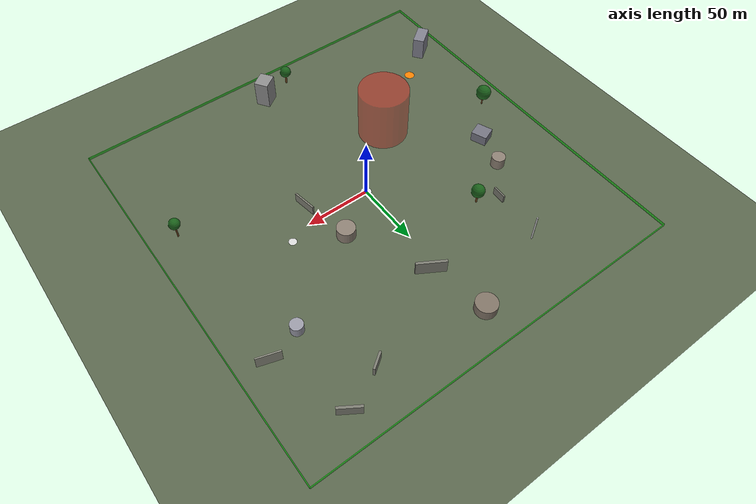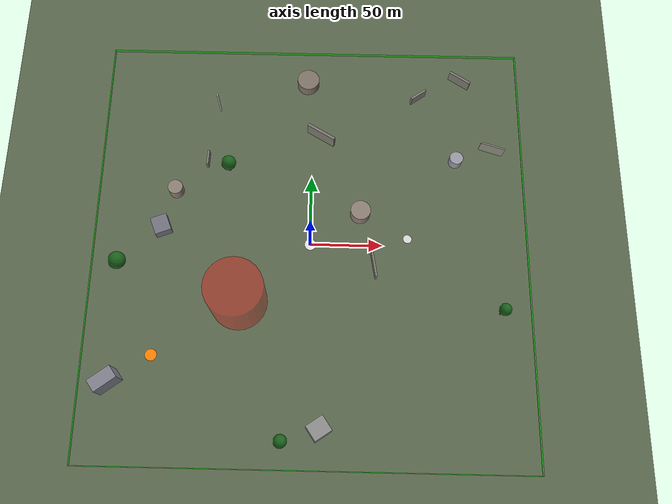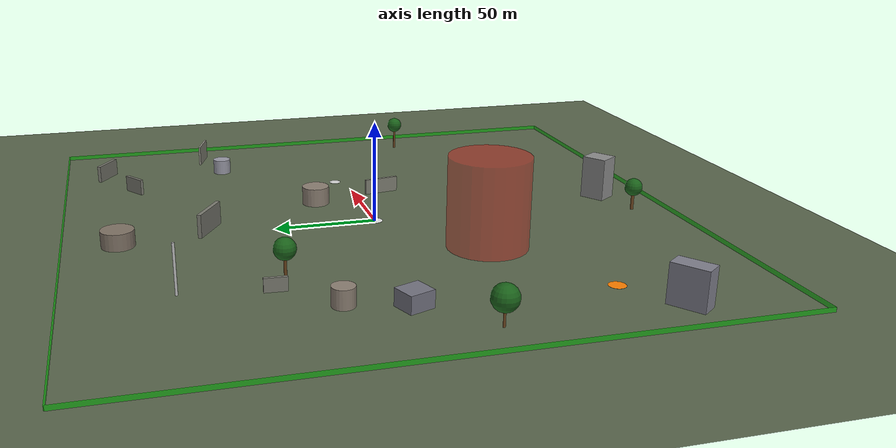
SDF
<?xml version="1.0" ?>
<sdf version="1.9">
  <!--
  Generated World: training_variant_009
  Seed: 51
  Difficulty: medium
  Obstacles: 18
  NFZs: 1
  Generated: 2025-12-27T10:39:35.573976
  Generator: Flyby F-11 World Generator v1.0.0
-->
  <world name="training_variant_009">
    <physics name="training_physics" type="ode">
      <max_step_size>0.001</max_step_size>
      <real_time_factor>1.0</real_time_factor>
      <real_time_update_rate>1000</real_time_update_rate>
      <ode>
        <solver>
          <type>quick</type>
          <iters>50</iters>
          <sor>1.3</sor>
        </solver>
        <constraints>
          <cfm>0.0</cfm>
          <erp>0.2</erp>
        </constraints>
      </ode>
    </physics>
    <plugin filename="gz-sim-physics-system" name="gz::sim::systems::Physics"/>
    <plugin filename="gz-sim-sensors-system" name="gz::sim::systems::Sensors">
      <render_engine>ogre2</render_engine>
    </plugin>
    <plugin filename="gz-sim-scene-broadcaster-system" name="gz::sim::systems::SceneBroadcaster"/>
    <plugin filename="gz-sim-user-commands-system" name="gz::sim::systems::UserCommands"/>
    <plugin filename="gz-sim-imu-system" name="gz::sim::systems::Imu"/>
    <plugin filename="gz-sim-air-pressure-system" name="gz::sim::systems::AirPressure"/>
    <plugin filename="gz-sim-magnetometer-system" name="gz::sim::systems::Magnetometer"/>
    <plugin filename="gz-sim-navsat-system" name="gz::sim::systems::NavSat"/>
    <plugin filename="gz-sim-contact-system" name="gz::sim::systems::Contact"/>
    <atmosphere type="adiabatic">
      <temperature>288.15</temperature>
      <pressure>101325</pressure>
      <mass_density>1.225</mass_density>
    </atmosphere>
    <spherical_coordinates>
      <surface_model>EARTH_WGS84</surface_model>
      <world_frame_orientation>ENU</world_frame_orientation>
      <latitude_deg>33.3853</latitude_deg>
      <longitude_deg>-117.5653</longitude_deg>
      <elevation>100</elevation>
      <heading_deg>0</heading_deg>
    </spherical_coordinates>
    <scene>
      <ambient>0.6 0.6 0.6 1</ambient>
      <background>0.7 0.8 0.9 1</background>
      <shadows>true</shadows>
      <grid>false</grid>
    </scene>
    <light type="directional" name="sun">
      <cast_shadows>true</cast_shadows>
      <pose>0 0 100 0 0 0</pose>
      <diffuse>0.8 0.8 0.8 1</diffuse>
      <specular>0.2 0.2 0.2 1</specular>
      <attenuation>
        <range>1000</range>
        <constant>0.9</constant>
        <linear>0.01</linear>
        <quadratic>0.001</quadratic>
      </attenuation>
      <direction>-0.5 0.1 -0.9</direction>
    </light>
    <model name="ground_plane">
      <static>true</static>
      <link name="link">
        <collision name="collision">
          <geometry>
            <plane>
              <normal>0 0 1</normal>
              <size>500 500</size>
            </plane>
          </geometry>
          <surface>
            <friction>
              <ode>
                <mu>100</mu>
                <mu2>50</mu2>
              </ode>
            </friction>
          </surface>
        </collision>
        <visual name="visual">
          <geometry>
            <plane>
              <normal>0 0 1</normal>
              <size>500 500</size>
            </plane>
          </geometry>
          <material>
            <ambient>0.35 0.4 0.3 1</ambient>
            <diffuse>0.35 0.4 0.3 1</diffuse>
          </material>
        </visual>
      </link>
    </model>
    <model name="geofence_north">
      <static>true</static>
      <pose>0 150.0 1 0 0 0</pose>
      <link name="link">
        <visual name="visual">
          <geometry>
            <box>
              <size>300.0 0.5 2</size>
            </box>
          </geometry>
          <material>
            <ambient>0 0.8 0 0.6</ambient>
            <diffuse>0 0.8 0 0.6</diffuse>
            <emissive>0 0.2 0 1</emissive>
          </material>
        </visual>
      </link>
    </model>
    <model name="geofence_south">
      <static>true</static>
      <pose>0 -150.0 1 0 0 0</pose>
      <link name="link">
        <visual name="visual">
          <geometry>
            <box>
              <size>300.0 0.5 2</size>
            </box>
          </geometry>
          <material>
            <ambient>0 0.8 0 0.6</ambient>
            <diffuse>0 0.8 0 0.6</diffuse>
            <emissive>0 0.2 0 1</emissive>
          </material>
        </visual>
      </link>
    </model>
    <model name="geofence_east">
      <static>true</static>
      <pose>150.0 0 1 0 0 0</pose>
      <link name="link">
        <visual name="visual">
          <geometry>
            <box>
              <size>0.5 300.0 2</size>
            </box>
          </geometry>
          <material>
            <ambient>0 0.8 0 0.6</ambient>
            <diffuse>0 0.8 0 0.6</diffuse>
            <emissive>0 0.2 0 1</emissive>
          </material>
        </visual>
      </link>
    </model>
    <model name="geofence_west">
      <static>true</static>
      <pose>-150.0 0 1 0 0 0</pose>
      <link name="link">
        <visual name="visual">
          <geometry>
            <box>
              <size>0.5 300.0 2</size>
            </box>
          </geometry>
          <material>
            <ambient>0 0.8 0 0.6</ambient>
            <diffuse>0 0.8 0 0.6</diffuse>
            <emissive>0 0.2 0 1</emissive>
          </material>
        </visual>
      </link>
    </model>
    <model name="nfz_0_volume">
      <static>true</static>
      <pose>-47.38441323392432 -41.759436503652566 21.779174104964234 0 0 0</pose>
      <link name="link">
        <visual name="visual">
          <geometry>
            <cylinder>
              <radius>19.34198162931129</radius>
              <length>43.55834820992847</length>
            </cylinder>
          </geometry>
          <material>
            <ambient>1 0 0 0.35000000000000003</ambient>
            <diffuse>1 0 0 0.35000000000000003</diffuse>
          </material>
        </visual>
      </link>
    </model>
    <model name="obstacle_pole_0">
      <static>true</static>
      <pose>-67.78133661920182 101.95616211088924 11.662994941783273 0 0 0.0</pose>
      <link name="link">
        <visual name="visual">
          <geometry>
            <cylinder>
              <radius>0.5980832470165182</radius>
              <length>23.325989883566546</length>
            </cylinder>
          </geometry>
          <material>
            <ambient>0.75 0.75 0.75 1.0</ambient>
            <diffuse>0.75 0.75 0.75 1.0</diffuse>
          </material>
        </visual>
        <collision name="collision">
          <geometry>
            <cylinder>
              <radius>0.5980832470165182</radius>
              <length>23.325989883566546</length>
            </cylinder>
          </geometry>
        </collision>
      </link>
    </model>
    <model name="obstacle_tank_1">
      <static>true</static>
      <pose>34.312729087630174 22.90588019002263 4.644345325011917 0 0 0.0</pose>
      <link name="link">
        <visual name="visual">
          <geometry>
            <cylinder>
              <radius>6.925887665031509</radius>
              <length>9.288690650023835</length>
            </cylinder>
          </geometry>
          <material>
            <ambient>0.55 0.5 0.45 1.0</ambient>
            <diffuse>0.55 0.5 0.45 1.0</diffuse>
          </material>
        </visual>
        <collision name="collision">
          <geometry>
            <cylinder>
              <radius>6.925887665031509</radius>
              <length>9.288690650023835</length>
            </cylinder>
          </geometry>
        </collision>
      </link>
    </model>
    <model name="obstacle_building_2">
      <static>true</static>
      <pose>-103.37049319606538 10.423293553272885 4.064625466219137 0 0 0.3752350505042705</pose>
      <link name="link">
        <visual name="visual">
          <geometry>
            <box>
              <size>11.332354164471678 12.275074190308205 8.129250932438273</size>
            </box>
          </geometry>
          <material>
            <ambient>0.45 0.45 0.5 1.0</ambient>
            <diffuse>0.45 0.45 0.5 1.0</diffuse>
          </material>
        </visual>
        <collision name="collision">
          <geometry>
            <box>
              <size>11.332354164471678 12.275074190308205 8.129250932438273</size>
            </box>
          </geometry>
        </collision>
      </link>
    </model>
    <model name="obstacle_wall_3">
      <static>true</static>
      <pose>76.37212503955374 113.99860424867603 4.101628179454306 0 0 0.6072405299968436</pose>
      <link name="link">
        <visual name="visual">
          <geometry>
            <box>
              <size>12.664473058351202 1.6158405862725371 8.203256358908613</size>
            </box>
          </geometry>
          <material>
            <ambient>0.48 0.48 0.44 1.0</ambient>
            <diffuse>0.48 0.48 0.44 1.0</diffuse>
          </material>
        </visual>
        <collision name="collision">
          <geometry>
            <box>
              <size>12.664473058351202 1.6158405862725371 8.203256358908613</size>
            </box>
          </geometry>
        </collision>
      </link>
    </model>
    <model name="obstacle_wall_4">
      <static>true</static>
      <pose>107.12108445427663 128.069638011274 4.410366185295879 0 0 2.5730836300954594</pose>
      <link name="link">
        <visual name="visual">
          <geometry>
            <box>
              <size>16.57243445027912 1.8372222346662055 8.820732370591758</size>
            </box>
          </geometry>
          <material>
            <ambient>0.48 0.48 0.44 1.0</ambient>
            <diffuse>0.48 0.48 0.44 1.0</diffuse>
          </material>
        </visual>
        <collision name="collision">
          <geometry>
            <box>
              <size>16.57243445027912 1.8372222346662055 8.820732370591758</size>
            </box>
          </geometry>
        </collision>
      </link>
    </model>
    <model name="obstacle_tree_5">
      <static>true</static>
      <pose>-129.69893868614886 -17.570465241274576 0 0 0 0.0</pose>
      <link name="link">
        <visual name="trunk">
          <pose>0 0 4.392528890042441 0 0 0</pose>
          <geometry>
            <cylinder>
              <radius>0.5524579924700873</radius>
              <length>8.785057780084882</length>
            </cylinder>
          </geometry>
          <material>
            <ambient>0.42 0.27 0.12 1.0</ambient>
            <diffuse>0.42 0.27 0.12 1.0</diffuse>
          </material>
        </visual>
        <visual name="canopy">
          <pose>0 0 12.360224185094491 0 0 0</pose>
          <geometry>
            <sphere>
              <radius>5.958610675016015</radius>
            </sphere>
          </geometry>
          <material>
            <ambient>0.1 0.38 0.1 1.0</ambient>
            <diffuse>0.1 0.38 0.1 1.0</diffuse>
          </material>
        </visual>
        <collision name="collision">
          <pose>0 0 10.351139565058457 0 0 0</pose>
          <geometry>
            <cylinder>
              <radius>5.958610675016015</radius>
              <length>20.702279130116914</length>
            </cylinder>
          </geometry>
        </collision>
      </link>
    </model>
    <model name="obstacle_tank_6">
      <static>true</static>
      <pose>-4.007812880335877 124.26343614390234 4.109448129952503 0 0 0.0</pose>
      <link name="link">
        <visual name="visual">
          <geometry>
            <cylinder>
              <radius>7.911322890530889</radius>
              <length>8.218896259905007</length>
            </cylinder>
          </geometry>
          <material>
            <ambient>0.5 0.45 0.4 1.0</ambient>
            <diffuse>0.5 0.45 0.4 1.0</diffuse>
          </material>
        </visual>
        <collision name="collision">
          <geometry>
            <cylinder>
              <radius>7.911322890530889</radius>
              <length>8.218896259905007</length>
            </cylinder>
          </geometry>
        </collision>
      </link>
    </model>
    <model name="obstacle_tree_7">
      <static>true</static>
      <pose>-16.281589882935506 -132.71385711358855 0 0 0 0.0</pose>
      <link name="link">
        <visual name="trunk">
          <pose>0 0 4.556634569831571 0 0 0</pose>
          <geometry>
            <cylinder>
              <radius>0.7969580921165327</radius>
              <length>9.113269139663142</length>
            </cylinder>
          </geometry>
          <material>
            <ambient>0.42 0.27 0.12 1.0</ambient>
            <diffuse>0.42 0.27 0.12 1.0</diffuse>
          </material>
        </visual>
        <visual name="canopy">
          <pose>0 0 11.804757727606647 0 0 0</pose>
          <geometry>
            <sphere>
              <radius>4.485814313239176</radius>
            </sphere>
          </geometry>
          <material>
            <ambient>0.1 0.38 0.1 1.0</ambient>
            <diffuse>0.1 0.38 0.1 1.0</diffuse>
          </material>
        </visual>
        <collision name="collision">
          <pose>0 0 9.042448883070747 0 0 0</pose>
          <geometry>
            <cylinder>
              <radius>4.485814313239176</radius>
              <length>18.084897766141495</length>
            </cylinder>
          </geometry>
        </collision>
      </link>
    </model>
    <model name="obstacle_wall_8">
      <static>true</static>
      <pose>6.128475712604512 81.04008847577649 5.795678962301375 0 0 2.609115294596289</pose>
      <link name="link">
        <visual name="visual">
          <geometry>
            <box>
              <size>21.789521654047025 1.9969075208484406 11.59135792460275</size>
            </box>
          </geometry>
          <material>
            <ambient>0.48 0.48 0.44 1.0</ambient>
            <diffuse>0.48 0.48 0.44 1.0</diffuse>
          </material>
        </visual>
        <collision name="collision">
          <geometry>
            <box>
              <size>21.789521654047025 1.9969075208484406 11.59135792460275</size>
            </box>
          </geometry>
        </collision>
      </link>
    </model>
    <model name="obstacle_wall_9">
      <static>true</static>
      <pose>-74.16089024337184 61.69414707242237 3.2616752135604865 0 0 1.5212293903206906</pose>
      <link name="link">
        <visual name="visual">
          <geometry>
            <box>
              <size>10.410652718793434 1.4206294009723393 6.523350427120973</size>
            </box>
          </geometry>
          <material>
            <ambient>0.48 0.48 0.44 1.0</ambient>
            <diffuse>0.48 0.48 0.44 1.0</diffuse>
          </material>
        </visual>
        <collision name="collision">
          <geometry>
            <box>
              <size>10.410652718793434 1.4206294009723393 6.523350427120973</size>
            </box>
          </geometry>
        </collision>
      </link>
    </model>
    <model name="obstacle_wall_10">
      <static>true</static>
      <pose>43.614145476015125 -14.837790463952743 3.9231255844735715 0 0 1.732521039251719</pose>
      <link name="link">
        <visual name="visual">
          <geometry>
            <box>
              <size>18.105599439169623 1.3226514120764208 7.846251168947143</size>
            </box>
          </geometry>
          <material>
            <ambient>0.5 0.5 0.45 1.0</ambient>
            <diffuse>0.5 0.5 0.45 1.0</diffuse>
          </material>
        </visual>
        <collision name="collision">
          <geometry>
            <box>
              <size>18.105599439169623 1.3226514120764208 7.846251168947143</size>
            </box>
          </geometry>
        </collision>
      </link>
    </model>
    <model name="obstacle_tank_11">
      <static>true</static>
      <pose>-95.21528962351607 37.663972046842076 4.4442758063833825 0 0 0.0</pose>
      <link name="link">
        <visual name="visual">
          <geometry>
            <cylinder>
              <radius>5.177883453749473</radius>
              <length>8.888551612766765</length>
            </cylinder>
          </geometry>
          <material>
            <ambient>0.55 0.5 0.45 1.0</ambient>
            <diffuse>0.55 0.5 0.45 1.0</diffuse>
          </material>
        </visual>
        <collision name="collision">
          <geometry>
            <cylinder>
              <radius>5.177883453749473</radius>
              <length>8.888551612766765</length>
            </cylinder>
          </geometry>
        </collision>
      </link>
    </model>
    <model name="obstacle_tank_12">
      <static>true</static>
      <pose>102.24104035841756 64.21295570477452 3.8943076163002717 0 0 0.0</pose>
      <link name="link">
        <visual name="visual">
          <geometry>
            <cylinder>
              <radius>4.714079264177101</radius>
              <length>7.788615232600543</length>
            </cylinder>
          </geometry>
          <material>
            <ambient>0.6 0.6 0.65 1.0</ambient>
            <diffuse>0.6 0.6 0.65 1.0</diffuse>
          </material>
        </visual>
        <collision name="collision">
          <geometry>
            <cylinder>
              <radius>4.714079264177101</radius>
              <length>7.788615232600543</length>
            </cylinder>
          </geometry>
        </collision>
      </link>
    </model>
    <model name="obstacle_tree_13">
      <static>true</static>
      <pose>-58.4429237023582 54.93298053086477 0 0 0 0.0</pose>
      <link name="link">
        <visual name="trunk">
          <pose>0 0 4.672150086765951 0 0 0</pose>
          <geometry>
            <cylinder>
              <radius>0.7032466018676107</radius>
              <length>9.344300173531902</length>
            </cylinder>
          </geometry>
          <material>
            <ambient>0.4 0.25 0.1 1.0</ambient>
            <diffuse>0.4 0.25 0.1 1.0</diffuse>
          </material>
        </visual>
        <visual name="canopy">
          <pose>0 0 12.450869698678517 0 0 0</pose>
          <geometry>
            <sphere>
              <radius>5.177615875244356</radius>
            </sphere>
          </geometry>
          <material>
            <ambient>0.1 0.38 0.1 1.0</ambient>
            <diffuse>0.1 0.38 0.1 1.0</diffuse>
          </material>
        </visual>
        <collision name="collision">
          <pose>0 0 9.849765962010308 0 0 0</pose>
          <geometry>
            <cylinder>
              <radius>5.177615875244356</radius>
              <length>19.699531924020615</length>
            </cylinder>
          </geometry>
        </collision>
      </link>
    </model>
    <model name="obstacle_wall_14">
      <static>true</static>
      <pose>128.02992199115505 72.67811372150919 5.3264007275061385 0 0 2.84083012858881</pose>
      <link name="link">
        <visual name="visual">
          <geometry>
            <box>
              <size>17.16828857154769 1.0168070617299314 10.652801455012277</size>
            </box>
          </geometry>
          <material>
            <ambient>0.55 0.55 0.5 1.0</ambient>
            <diffuse>0.55 0.55 0.5 1.0</diffuse>
          </material>
        </visual>
        <collision name="collision">
          <geometry>
            <box>
              <size>17.16828857154769 1.0168070617299314 10.652801455012277</size>
            </box>
          </geometry>
        </collision>
      </link>
    </model>
    <model name="obstacle_tree_15">
      <static>true</static>
      <pose>128.8049978469829 -46.279934011285434 0 0 0 0.0</pose>
      <link name="link">
        <visual name="trunk">
          <pose>0 0 5.956336401107118 0 0 0</pose>
          <geometry>
            <cylinder>
              <radius>0.5951876200437408</radius>
              <length>11.912672802214235</length>
            </cylinder>
          </geometry>
          <material>
            <ambient>0.42 0.27 0.12 1.0</ambient>
            <diffuse>0.42 0.27 0.12 1.0</diffuse>
          </material>
        </visual>
        <visual name="canopy">
          <pose>0 0 14.435396308813498 0 0 0</pose>
          <geometry>
            <sphere>
              <radius>4.20453917766544</radius>
            </sphere>
          </geometry>
          <material>
            <ambient>0.1 0.38 0.1 1.0</ambient>
            <diffuse>0.1 0.38 0.1 1.0</diffuse>
          </material>
        </visual>
        <collision name="collision">
          <pose>0 0 10.160875578772558 0 0 0</pose>
          <geometry>
            <cylinder>
              <radius>4.20453917766544</radius>
              <length>20.321751157545116</length>
            </cylinder>
          </geometry>
        </collision>
      </link>
    </model>
    <model name="obstacle_building_16">
      <static>true</static>
      <pose>-130.10765350771675 -97.09983701019492 9.154486436836024 0 0 0.6345135616859527</pose>
      <link name="link">
        <visual name="visual">
          <geometry>
            <box>
              <size>16.911487513078303 8.91991787631152 18.308972873672047</size>
            </box>
          </geometry>
          <material>
            <ambient>0.5 0.5 0.55 1.0</ambient>
            <diffuse>0.5 0.5 0.55 1.0</diffuse>
          </material>
        </visual>
        <collision name="collision">
          <geometry>
            <box>
              <size>16.911487513078303 8.91991787631152 18.308972873672047</size>
            </box>
          </geometry>
        </collision>
      </link>
    </model>
    <model name="obstacle_building_17">
      <static>true</static>
      <pose>7.826961751544388 -124.80252683723955 11.004100262491107 0 0 0.5934643993822525</pose>
      <link name="link">
        <visual name="visual">
          <geometry>
            <box>
              <size>12.691119530654689 11.050378046601857 22.008200524982215</size>
            </box>
          </geometry>
          <material>
            <ambient>0.55 0.55 0.55 1.0</ambient>
            <diffuse>0.55 0.55 0.55 1.0</diffuse>
          </material>
        </visual>
        <collision name="collision">
          <geometry>
            <box>
              <size>12.691119530654689 11.050378046601857 22.008200524982215</size>
            </box>
          </geometry>
        </collision>
      </link>
    </model>
    <model name="lz_primary">
      <static>true</static>
      <pose>0 0 0.02 0 0 0</pose>
      <link name="link">
        <visual name="pad">
          <geometry>
            <cylinder>
              <radius>4.0</radius>
              <length>0.04</length>
            </cylinder>
          </geometry>
          <material>
            <ambient>0.9 0.9 0.9 1</ambient>
            <diffuse>0.9 0.9 0.9 1</diffuse>
          </material>
        </visual>
        <visual name="H_v">
          <pose>0 0 0.02 0 0 0</pose>
          <geometry>
            <box>
              <size>0.6 2.5 0.01</size>
            </box>
          </geometry>
          <material>
            <ambient>0 0 0.8 1</ambient>
            <diffuse>0 0 0.8 1</diffuse>
          </material>
        </visual>
        <visual name="H_h">
          <pose>0 0 0.02 0 0 0</pose>
          <geometry>
            <box>
              <size>2.5 0.6 0.01</size>
            </box>
          </geometry>
          <material>
            <ambient>0 0 0.8 1</ambient>
            <diffuse>0 0 0.8 1</diffuse>
          </material>
        </visual>
      </link>
    </model>
    <model name="lz_secondary">
      <static>true</static>
      <pose>67.32184178445533 5.363783433459787 0.02 0 0 0</pose>
      <link name="link">
        <visual name="pad">
          <geometry>
            <cylinder>
              <radius>3.0</radius>
              <length>0.04</length>
            </cylinder>
          </geometry>
          <material>
            <ambient>0.85 0.85 0.85 1</ambient>
            <diffuse>0.85 0.85 0.85 1</diffuse>
          </material>
        </visual>
      </link>
    </model>
    <model name="lz_emergency">
      <static>true</static>
      <pose>-104.05769885765147 -78.79609662030693 0.02 0 0 0</pose>
      <link name="link">
        <visual name="pad">
          <geometry>
            <cylinder>
              <radius>4.0</radius>
              <length>0.04</length>
            </cylinder>
          </geometry>
          <material>
            <ambient>1 0.5 0 1</ambient>
            <diffuse>1 0.5 0 1</diffuse>
          </material>
        </visual>
      </link>
    </model>
    <include>
      <uri>model://iris_with_ardupilot</uri>
      <name>iris</name>
      <pose>0 0 0.5 0 0 0</pose>
    </include>
  </world>
</sdf>

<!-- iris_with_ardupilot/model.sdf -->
<sdf version="1.9">
  <model name="iris_with_ardupilot">
    <pose>0 0 0.2 0 0 0</pose>

    <link name="base_link">
      <inertial>
        <mass>1.5</mass>
        <inertia>
          <ixx>0.029125</ixx>
          <ixy>0</ixy>
          <ixz>0</ixz>
          <iyy>0.029125</iyy>
          <iyz>0</iyz>
          <izz>0.055225</izz>
        </inertia>
      </inertial>

      <visual name="body_visual">
        <geometry>
          <box>
            <size>0.47 0.47 0.11</size>
          </box>
        </geometry>
        <material>
          <ambient>0.2 0.2 0.2 1</ambient>
          <diffuse>0.2 0.2 0.2 1</diffuse>
        </material>
      </visual>

      <!-- Center marker for orientation (green = forward) -->
      <visual name="center_marker">
        <pose>0.15 0 0 0 0 0</pose>
        <geometry>
          <sphere>
            <radius>0.05</radius>
          </sphere>
        </geometry>
        <material>
          <ambient>0 1 0 1</ambient>
          <diffuse>0 1 0 1</diffuse>
        </material>
      </visual>

      <collision name="collision">
        <geometry>
          <box>
            <size>0.47 0.47 0.11</size>
          </box>
        </geometry>
      </collision>

      <!-- GPS/NavSat Sensor                -->
      <!-- Consumer-grade GPS accuracy      -->
      <sensor name="navsat_sensor" type="navsat">
        <always_on>1</always_on>
        <update_rate>10</update_rate>
        <topic>gps</topic>
        <navsat>
          <position_sensing>
            <horizontal>
              <noise type="gaussian">
                <mean>0.0</mean>
                <stddev>0.5</stddev>
              </noise>
            </horizontal>
            <vertical>
              <noise type="gaussian">
                <mean>0.0</mean>
                <stddev>1.0</stddev>
              </noise>
            </vertical>
          </position_sensing>
          <velocity_sensing>
            <horizontal>
              <noise type="gaussian">
                <mean>0.0</mean>
                <stddev>0.05</stddev>
              </noise>
            </horizontal>
            <vertical>
              <noise type="gaussian">
                <mean>0.0</mean>
                <stddev>0.1</stddev>
              </noise>
            </vertical>
          </velocity_sensing>
        </navsat>
      </sensor>

      <!-- Magnetometer Sensor              -->
      <!-- Earth magnetic field sensing     -->
      <!-- Declination: ~11.5 deg E (San Diego) -->
      <sensor name="magnetometer_sensor" type="magnetometer">
        <always_on>1</always_on>
        <update_rate>50</update_rate>
        <topic>magnetometer</topic>
        <magnetometer>
          <x>
            <noise type="gaussian">
              <mean>0</mean>
              <stddev>0.001</stddev>
              <bias_mean>0.00001</bias_mean>
              <bias_stddev>0.000002</bias_stddev>
            </noise>
          </x>
          <y>
            <noise type="gaussian">
              <mean>0</mean>
              <stddev>0.001</stddev>
              <bias_mean>0.00001</bias_mean>
              <bias_stddev>0.000002</bias_stddev>
            </noise>
          </y>
          <z>
            <noise type="gaussian">
              <mean>0</mean>
              <stddev>0.001</stddev>
              <bias_mean>0.00001</bias_mean>
              <bias_stddev>0.000002</bias_stddev>
            </noise>
          </z>
        </magnetometer>
      </sensor>

      <!-- Barometer Sensor                 -->
      <!-- Atmospheric pressure sensing     -->
      <!-- ~8.3 Pa per meter at sea level   -->
      <sensor name="air_pressure_sensor" type="air_pressure">
        <always_on>1</always_on>
        <update_rate>20</update_rate>
        <topic>air_pressure</topic>
        <air_pressure>
          <reference_altitude>0</reference_altitude>
          <pressure>
            <noise type="gaussian">
              <mean>0</mean>
              <stddev>10</stddev>
            </noise>
          </pressure>
        </air_pressure>
      </sensor>

    </link>

    <!-- Rotor 0 (Front Right, CW)        -->
    <link name="rotor_0">
      <pose>0.13 -0.22 0.023 0 0 0</pose>
      <inertial>
        <mass>0.005</mass>
        <inertia>
          <ixx>9.75e-07</ixx>
          <ixy>0</ixy>
          <ixz>0</ixz>
          <iyy>0.000166704</iyy>
          <iyz>0</iyz>
          <izz>0.000167604</izz>
        </inertia>
      </inertial>
      <visual name="visual">
        <geometry>
          <cylinder>
            <radius>0.128</radius>
            <length>0.005</length>
          </cylinder>
        </geometry>
        <material>
          <ambient>1 0 0 1</ambient>
          <diffuse>1 0 0 1</diffuse>
        </material>
      </visual>
    </link>

    <!-- Rotor 1 (Back Left, CW)          -->
    <link name="rotor_1">
      <pose>-0.13 0.2 0.023 0 0 0</pose>
      <inertial>
        <mass>0.005</mass>
        <inertia>
          <ixx>9.75e-07</ixx>
          <ixy>0</ixy>
          <ixz>0</ixz>
          <iyy>0.000166704</iyy>
          <iyz>0</iyz>
          <izz>0.000167604</izz>
        </inertia>
      </inertial>
      <visual name="visual">
        <geometry>
          <cylinder>
            <radius>0.128</radius>
            <length>0.005</length>
          </cylinder>
        </geometry>
        <material>
          <ambient>1 0 0 1</ambient>
          <diffuse>1 0 0 1</diffuse>
        </material>
      </visual>
    </link>

    <!-- Rotor 2 (Front Left, CCW)        -->
    <link name="rotor_2">
      <pose>0.13 0.22 0.023 0 0 0</pose>
      <inertial>
        <mass>0.005</mass>
        <inertia>
          <ixx>9.75e-07</ixx>
          <ixy>0</ixy>
          <ixz>0</ixz>
          <iyy>0.000166704</iyy>
          <iyz>0</iyz>
          <izz>0.000167604</izz>
        </inertia>
      </inertial>
      <visual name="visual">
        <geometry>
          <cylinder>
            <radius>0.128</radius>
            <length>0.005</length>
          </cylinder>
        </geometry>
        <material>
          <ambient>0 0 1 1</ambient>
          <diffuse>0 0 1 1</diffuse>
        </material>
      </visual>
    </link>

    <!-- Rotor 3 (Back Right, CCW)        -->
    <link name="rotor_3">
      <pose>-0.13 -0.2 0.023 0 0 0</pose>
      <inertial>
        <mass>0.005</mass>
        <inertia>
          <ixx>9.75e-07</ixx>
          <ixy>0</ixy>
          <ixz>0</ixz>
          <iyy>0.000166704</iyy>
          <iyz>0</iyz>
          <izz>0.000167604</izz>
        </inertia>
      </inertial>
      <visual name="visual">
        <geometry>
          <cylinder>
            <radius>0.128</radius>
            <length>0.005</length>
          </cylinder>
        </geometry>
        <material>
          <ambient>0 0 1 1</ambient>
          <diffuse>0 0 1 1</diffuse>
        </material>
      </visual>
    </link>

    <!-- Rotor joints -->
    <joint name="rotor_0_joint" type="revolute">
      <parent>base_link</parent>
      <child>rotor_0</child>
      <axis>
        <xyz>0 0 1</xyz>
        <limit>
          <lower>-1e16</lower>
          <upper>1e16</upper>
        </limit>
      </axis>
    </joint>

    <joint name="rotor_1_joint" type="revolute">
      <parent>base_link</parent>
      <child>rotor_1</child>
      <axis>
        <xyz>0 0 1</xyz>
        <limit>
          <lower>-1e16</lower>
          <upper>1e16</upper>
        </limit>
      </axis>
    </joint>

    <joint name="rotor_2_joint" type="revolute">
      <parent>base_link</parent>
      <child>rotor_2</child>
      <axis>
        <xyz>0 0 1</xyz>
        <limit>
          <lower>-1e16</lower>
          <upper>1e16</upper>
        </limit>
      </axis>
    </joint>

    <joint name="rotor_3_joint" type="revolute">
      <parent>base_link</parent>
      <child>rotor_3</child>
      <axis>
        <xyz>0 0 1</xyz>
        <limit>
          <lower>-1e16</lower>
          <upper>1e16</upper>
        </limit>
      </axis>
    </joint>

    <!-- IMU Sensor Link                  -->
    <!-- 250Hz MEMS IMU with noise        -->
    <link name="imu_link">
      <pose>0 0 0 0 0 0</pose>
      <inertial>
        <mass>0.001</mass>
        <inertia>
          <ixx>1e-05</ixx>
          <ixy>0</ixy>
          <ixz>0</ixz>
          <iyy>1e-05</iyy>
          <iyz>0</iyz>
          <izz>1e-05</izz>
        </inertia>
      </inertial>
      <sensor name="imu_sensor" type="imu">
        <always_on>1</always_on>
        <update_rate>250</update_rate>
        <topic>imu</topic>
        <imu>
          <angular_velocity>
            <x>
              <noise type="gaussian">
                <mean>0</mean>
                <stddev>0.009</stddev>
                <bias_mean>0.0001</bias_mean>
                <bias_stddev>0.00002</bias_stddev>
              </noise>
            </x>
            <y>
              <noise type="gaussian">
                <mean>0</mean>
                <stddev>0.009</stddev>
                <bias_mean>0.0001</bias_mean>
                <bias_stddev>0.00002</bias_stddev>
              </noise>
            </y>
            <z>
              <noise type="gaussian">
                <mean>0</mean>
                <stddev>0.009</stddev>
                <bias_mean>0.0001</bias_mean>
                <bias_stddev>0.00002</bias_stddev>
              </noise>
            </z>
          </angular_velocity>
          <linear_acceleration>
            <x>
              <noise type="gaussian">
                <mean>0</mean>
                <stddev>0.017</stddev>
                <bias_mean>0.001</bias_mean>
                <bias_stddev>0.0002</bias_stddev>
              </noise>
            </x>
            <y>
              <noise type="gaussian">
                <mean>0</mean>
                <stddev>0.017</stddev>
                <bias_mean>0.001</bias_mean>
                <bias_stddev>0.0002</bias_stddev>
              </noise>
            </y>
            <z>
              <noise type="gaussian">
                <mean>0</mean>
                <stddev>0.017</stddev>
                <bias_mean>0.001</bias_mean>
                <bias_stddev>0.0002</bias_stddev>
              </noise>
            </z>
          </linear_acceleration>
        </imu>
      </sensor>
    </link>

    <joint name="imu_joint" type="fixed">
      <parent>base_link</parent>
      <child>imu_link</child>
    </joint>

    <!-- Rangefinder Link                 -->
    <!-- Downward-facing lidar for AGL    -->
    <link name="rangefinder_link">
      <pose>0 0 -0.05 0 0 0</pose>
      <inertial>
        <mass>0.01</mass>
        <inertia>
          <ixx>1e-05</ixx>
          <ixy>0</ixy>
          <ixz>0</ixz>
          <iyy>1e-05</iyy>
          <iyz>0</iyz>
          <izz>1e-05</izz>
        </inertia>
      </inertial>
      <visual name="visual">
        <geometry>
          <cylinder>
            <radius>0.01</radius>
            <length>0.02</length>
          </cylinder>
        </geometry>
        <material>
          <ambient>0.5 0.5 0.5 1</ambient>
          <diffuse>0.5 0.5 0.5 1</diffuse>
        </material>
      </visual>
      <sensor name="rangefinder" type="gpu_lidar">
        <!-- Pointing straight down (pitch = -90 deg = -1.5708 rad) -->
        <pose>0 0 0 0 1.5708 0</pose>
        <always_on>1</always_on>
        <update_rate>20</update_rate>
        <topic>rangefinder</topic>
        <ray>
          <scan>
            <horizontal>
              <samples>1</samples>
              <resolution>1</resolution>
              <min_angle>0</min_angle>
              <max_angle>0</max_angle>
            </horizontal>
            <vertical>
              <samples>1</samples>
              <resolution>1</resolution>
              <min_angle>0</min_angle>
              <max_angle>0</max_angle>
            </vertical>
          </scan>
          <range>
            <min>0.1</min>
            <max>40.0</max>
            <resolution>0.01</resolution>
          </range>
          <noise>
            <type>gaussian</type>
            <mean>0</mean>
            <stddev>0.02</stddev>
          </noise>
        </ray>
        <visualize>false</visualize>
      </sensor>
    </link>

    <joint name="rangefinder_joint" type="fixed">
      <parent>base_link</parent>
      <child>rangefinder_link</child>
    </joint>

    <!-- ArduPilot Plugin                 -->
    <plugin filename="ArduPilotPlugin" name="ArduPilotPlugin">
      <!-- Network Configuration -->
      <fdm_addr>127.0.0.1</fdm_addr>
      <fdm_port_in>9002</fdm_port_in>
      <fdm_port_out>9003</fdm_port_out>
      <connectionTimeoutMaxCount>5</connectionTimeoutMaxCount>

      <!-- Simulation Settings -->
      <lock_step>1</lock_step>
      <have_32_channels>0</have_32_channels>

      <!-- Coordinate Transforms -->
      <modelXYZToAirplaneXForwardZDown>0 0 0 3.141593 0 0</modelXYZToAirplaneXForwardZDown>
      <gazeboXYZToNED>0 0 0 3.141593 0 0</gazeboXYZToNED>

      <!-- Sensor Reference -->
      <imuName>imu_link::imu_sensor</imuName>

      <!-- Control Channel 0: Front Right (CW) -->
      <control channel="0">
        <jointName>rotor_0_joint</jointName>
        <useForce>1</useForce>
        <multiplier>838</multiplier>
        <offset>-0.5</offset>
        <servo_min>1000</servo_min>
        <servo_max>2000</servo_max>
        <type>VELOCITY</type>
        <p_gain>0.20</p_gain>
        <i_gain>0</i_gain>
        <d_gain>0</d_gain>
        <i_max>0</i_max>
        <i_min>0</i_min>
        <cmd_max>2.5</cmd_max>
        <cmd_min>-2.5</cmd_min>
      </control>

      <!-- Control Channel 1: Back Left (CW) -->
      <control channel="1">
        <jointName>rotor_1_joint</jointName>
        <useForce>1</useForce>
        <multiplier>838</multiplier>
        <offset>-0.5</offset>
        <servo_min>1000</servo_min>
        <servo_max>2000</servo_max>
        <type>VELOCITY</type>
        <p_gain>0.20</p_gain>
        <i_gain>0</i_gain>
        <d_gain>0</d_gain>
        <i_max>0</i_max>
        <i_min>0</i_min>
        <cmd_max>2.5</cmd_max>
        <cmd_min>-2.5</cmd_min>
      </control>

      <!-- Control Channel 2: Front Left (CCW) -->
      <control channel="2">
        <jointName>rotor_2_joint</jointName>
        <useForce>1</useForce>
        <multiplier>838</multiplier>
        <offset>-0.5</offset>
        <servo_min>1000</servo_min>
        <servo_max>2000</servo_max>
        <type>VELOCITY</type>
        <p_gain>0.20</p_gain>
        <i_gain>0</i_gain>
        <d_gain>0</d_gain>
        <i_max>0</i_max>
        <i_min>0</i_min>
        <cmd_max>2.5</cmd_max>
        <cmd_min>-2.5</cmd_min>
      </control>

      <!-- Control Channel 3: Back Right (CCW) -->
      <control channel="3">
        <jointName>rotor_3_joint</jointName>
        <useForce>1</useForce>
        <multiplier>838</multiplier>
        <offset>-0.5</offset>
        <servo_min>1000</servo_min>
        <servo_max>2000</servo_max>
        <type>VELOCITY</type>
        <p_gain>0.20</p_gain>
        <i_gain>0</i_gain>
        <d_gain>0</d_gain>
        <i_max>0</i_max>
        <i_min>0</i_min>
        <cmd_max>2.5</cmd_max>
        <cmd_min>-2.5</cmd_min>
      </control>
    </plugin>

  </model>
</sdf>
